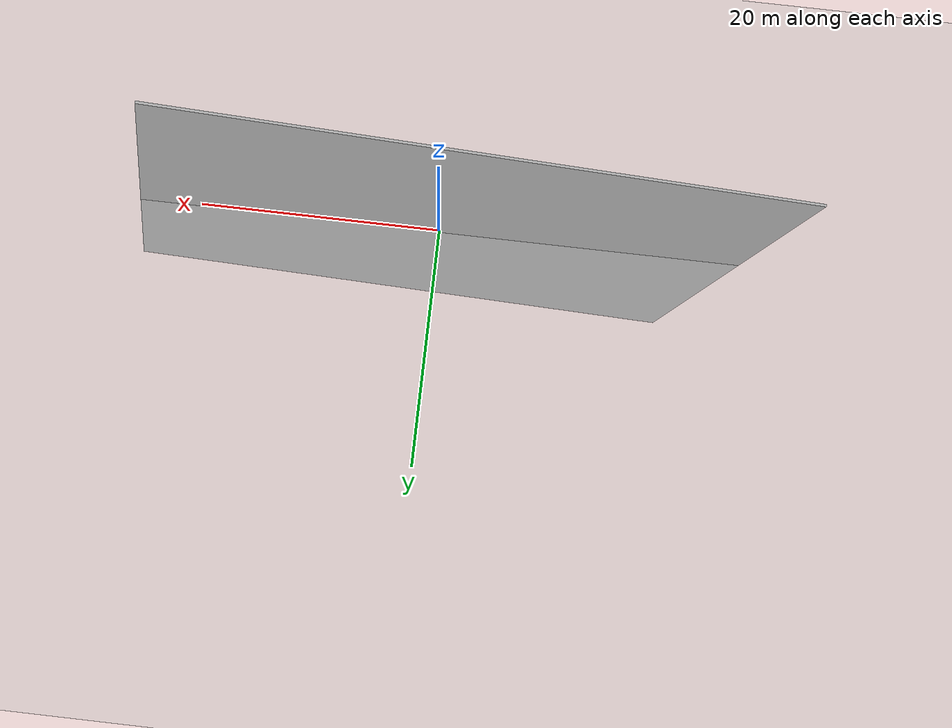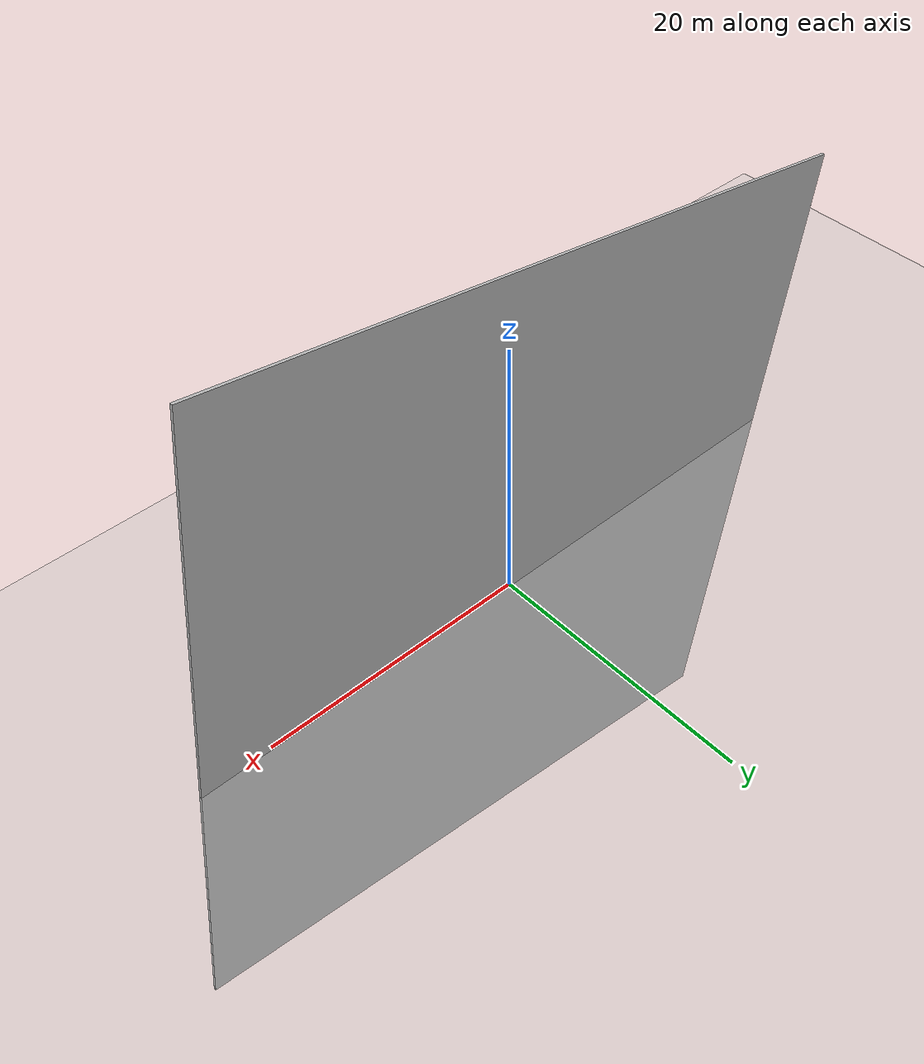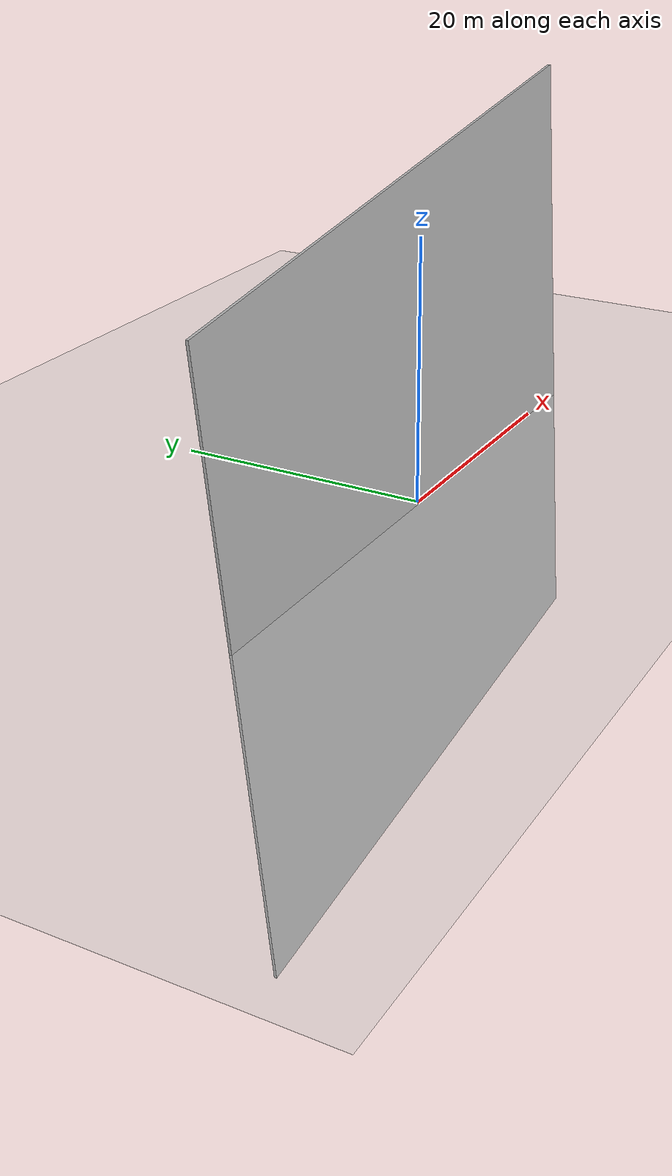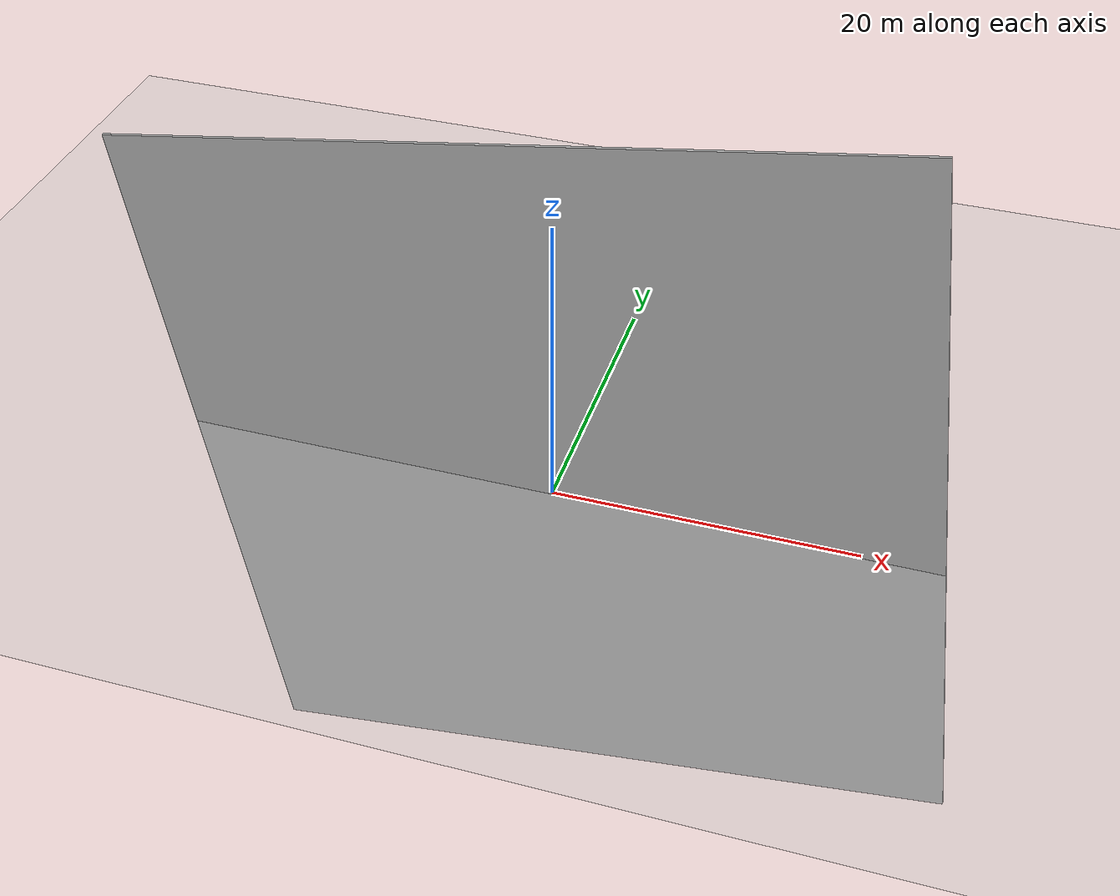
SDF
<?xml version="1.0" ?>
<sdf version="1.6">
<world name="default">
  <include>
        <uri>model://ground_plane</uri>
    </include>
    <include>
      <uri>model://sun</uri>
    </include>
  <model name="Target">
    <static>false</static>
    <pose>0 0 0 0 3 0</pose>
    <link name="link">
      <collision name="collision">
        <geometry>
          <mesh>
            <uri>file://full_target.obj</uri>
            <scale> 0.10 0.10 0.10 </scale>
          </mesh>
        </geometry>
      </collision>
      <visual name="visual">
        <geometry>
          <mesh>
            <uri>file://full_target.obj</uri>
            <scale> 0.10 0.10 0.10 </scale>
          </mesh>

        </geometry>
        <material>
            <script>
            <uri>file://full_target.mtl</uri>
            </script>
        </material>
      </visual>
    </link>
  </model>
</world>
</sdf>
